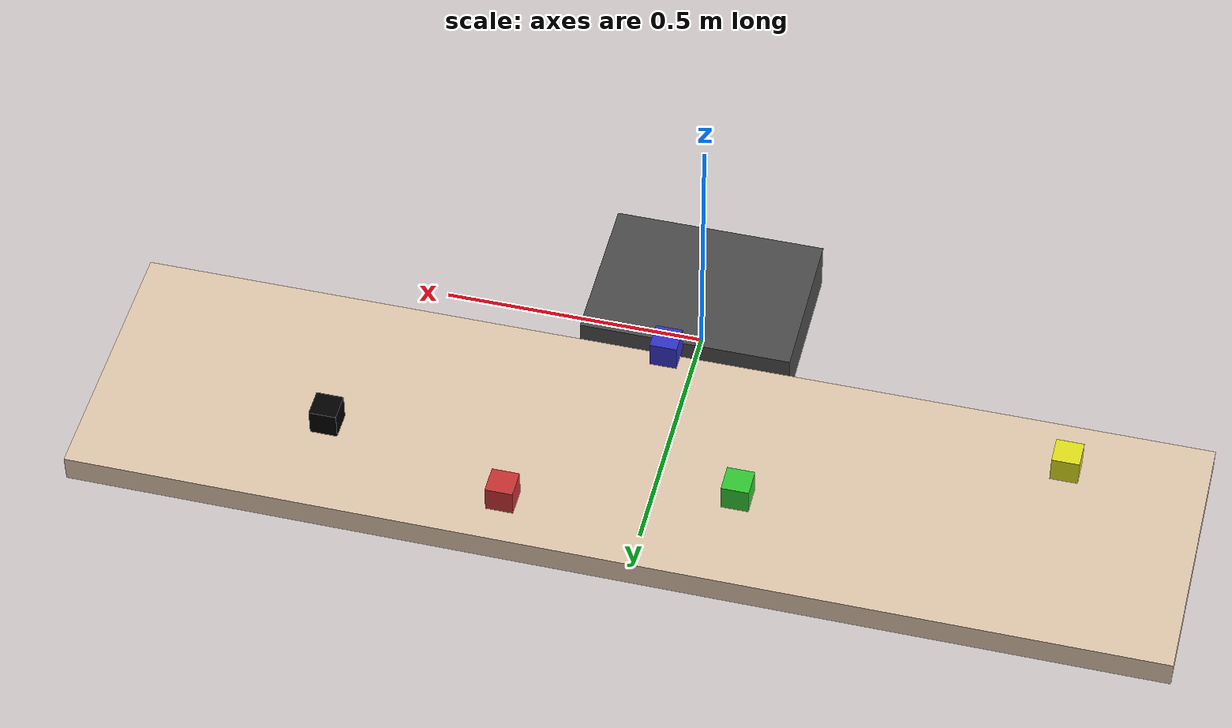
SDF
<sdf version="1.6">
 <world name="assembly_mobile_manipulation">
  <model name="mobile_base">
   <static>false</static>
   <pose>0 0 0.1 0 0 0</pose>
   <link name="base_link">
    <inertial><mass>5.0</mass><inertia><ixx>0.05</ixx><iyy>0.05</iyy><izz>0.05</izz></inertia></inertial>
    <collision name="collision">
     <geometry><box><size>0.4 0.3 0.1</size></box></geometry>
     <proximity_properties><mu_dynamic>0.8</mu_dynamic><mu_static>0.8</mu_static></proximity_properties>
    </collision>
    <visual name="visual">
     <geometry><box><size>0.4 0.3 0.1</size></box></geometry>
     <material><diffuse>0.3 0.3 0.3 1</diffuse></material>
    </visual>
   </link>
   <joint name="base_slide_x" type="prismatic">
    <parent>world</parent>
    <child>base_link</child>
    <axis>
     <xyz>1 0 0</xyz>
     <limit><lower>-1.5</lower><upper>1.5</upper><effort>100.0</effort><velocity>1.0</velocity></limit>
    </axis>
   </joint>
  </model>
  <joint name="panda_to_mobile_base" type="fixed">
   <parent>mobile_base::base_link</parent>
   <child>panda::panda_link0</child>
  </joint>
  <model name="table">
   <static>true</static>
   <pose>0 0.5 0.2 0 0 0</pose>
   <link name="table_link">
    <visual name="visual">
     <geometry><box><size>2 0.5 0.05</size></box></geometry>
     <material><diffuse>0.9 0.8 0.7 1.0</diffuse></material>
    </visual>
    <collision name="collision">
     <geometry><box><size>2 0.5 0.05</size></box></geometry>
     <proximity_properties><mu_dynamic>0.3</mu_dynamic><mu_static>0.3</mu_static></proximity_properties>
    </collision>
   </link>
  </model>
  <model name="cube_red">
   <pose>0.2 0.7 0.3 0 0 0</pose>
   <link name="link">
    <inertial><mass>0.1</mass><inertia><ixx>8.33e-5</ixx><iyy>8.33e-5</iyy><izz>8.33e-5</izz></inertia></inertial>
    <collision name="collision">
     <geometry><box><size>0.05 0.05 0.05</size></box></geometry>
     <proximity_properties><mu_dynamic>0.5</mu_dynamic><mu_static>0.5</mu_static></proximity_properties>
    </collision>
    <visual name="visual">
     <geometry><box><size>0.05 0.05 0.05</size></box></geometry>
     <material><diffuse>0.8 0.2 0.2 1.0</diffuse></material>
    </visual>
   </link>
  </model>
  <model name="cube_blue">
   <pose>0 0.3 0.3 0 0 0</pose>
   <link name="link">
    <inertial><mass>0.1</mass><inertia><ixx>8.33e-5</ixx><iyy>8.33e-5</iyy><izz>8.33e-5</izz></inertia></inertial>
    <collision name="collision">
     <geometry><box><size>0.05 0.05 0.05</size></box></geometry>
     <proximity_properties><mu_dynamic>0.5</mu_dynamic><mu_static>0.5</mu_static></proximity_properties>
    </collision>
    <visual name="visual">
     <geometry><box><size>0.05 0.05 0.05</size></box></geometry>
     <material><diffuse>0.2 0.2 0.8 1.0</diffuse></material>
    </visual>
   </link>
  </model>
  <model name="cube_green">
   <pose>-0.2 0.6 0.3 0 0 0</pose>
   <link name="link">
    <inertial><mass>0.1</mass><inertia><ixx>8.33e-5</ixx><iyy>8.33e-5</iyy><izz>8.33e-5</izz></inertia></inertial>
    <collision name="collision">
     <geometry><box><size>0.05 0.05 0.05</size></box></geometry>
     <proximity_properties><mu_dynamic>0.5</mu_dynamic><mu_static>0.5</mu_static></proximity_properties>
    </collision>
    <visual name="visual">
     <geometry><box><size>0.05 0.05 0.05</size></box></geometry>
     <material><diffuse>0.2 0.8 0.2 1.0</diffuse></material>
    </visual>
   </link>
  </model>
  <model name="cube_yellow">
   <pose>-0.75 0.4 0.3 0 0 0</pose>
   <link name="link">
    <inertial><mass>0.1</mass><inertia><ixx>8.33e-5</ixx><iyy>8.33e-5</iyy><izz>8.33e-5</izz></inertia></inertial>
    <collision name="collision">
     <geometry><box><size>0.05 0.05 0.05</size></box></geometry>
     <proximity_properties><mu_dynamic>0.5</mu_dynamic><mu_static>0.5</mu_static></proximity_properties>
    </collision>
    <visual name="visual">
     <geometry><box><size>0.05 0.05 0.05</size></box></geometry>
     <material><diffuse>0.9 0.9 0.1 1.0</diffuse></material>
    </visual>
   </link>
  </model>
  <model name="cube_black">
   <pose>0.55 0.6 0.3 0 0 0</pose>
   <link name="link">
    <inertial><mass>0.1</mass><inertia><ixx>8.33e-5</ixx><iyy>8.33e-5</iyy><izz>8.33e-5</izz></inertia></inertial>
    <collision name="collision">
     <geometry><box><size>0.05 0.05 0.05</size></box></geometry>
     <proximity_properties><mu_dynamic>0.5</mu_dynamic><mu_static>0.5</mu_static></proximity_properties>
    </collision>
    <visual name="visual">
     <geometry><box><size>0.05 0.05 0.05</size></box></geometry>
     <material><diffuse>0 0 0 1.0</diffuse></material>
    </visual>
   </link>
  </model>
 </world>
</sdf>
